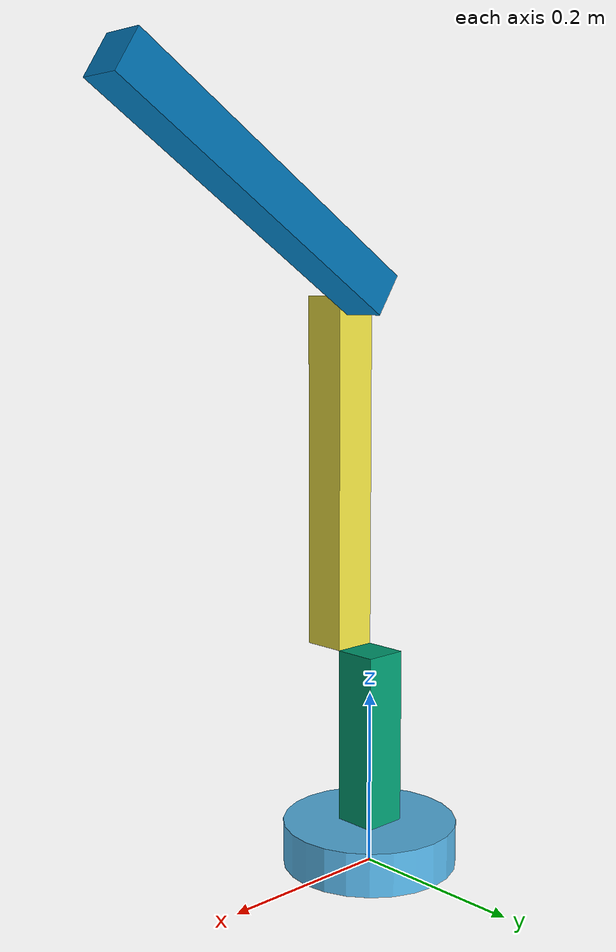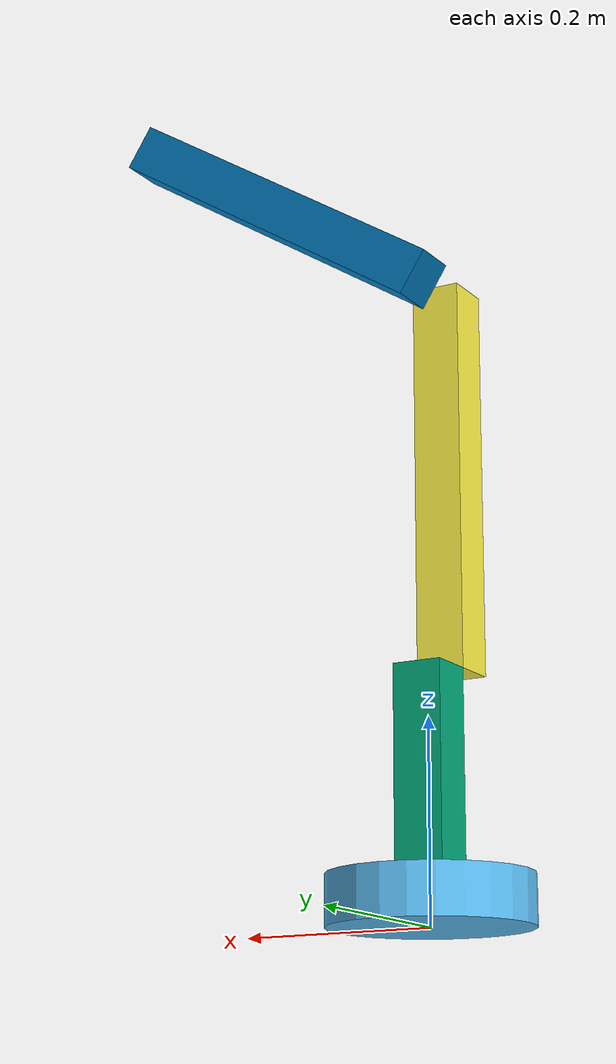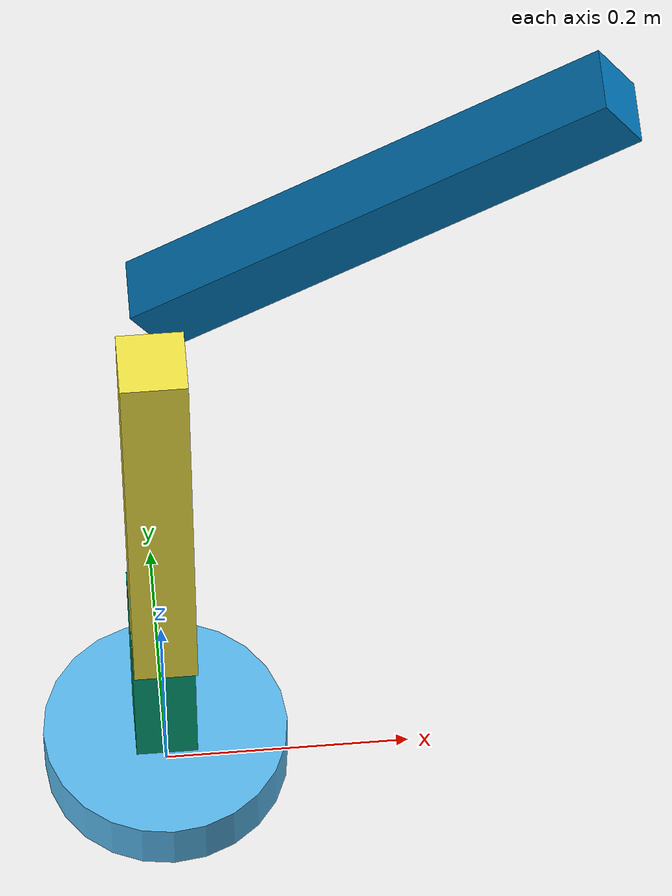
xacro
<?xml version="1.0"?>
<robot xmlns:xacro="http://www.ros.org/wiki/xacro" name="manp">

<!-- Constants -->

	<xacro:property name="pi" value="3.14159265359"/>
	<xacro:property name="width" value="0.05"/>
	<xacro:property name="height" value="0.4"/>
	<xacro:property name="base_h" value="0.05"/>
	<xacro:property name="base_r" value="0.1"/>
	<xacro:property name="base_link_mass" value="2"/>
	<xacro:property name="link_mass" value="4"/>

<!-- Links -->

	<link name="world"/>

	<link name="base_link">
		<visual>
			<geometry>
				<cylinder length="${base_h}" radius="${base_r}"/>
			</geometry>
			<origin xyz="0 0 ${base_h/2}"/>
		</visual>
		<inertial>
			<origin xyz="0 0 ${base_h/2}"/>
      			<mass value="${base_link_mass}"/>
      			<inertia
				ixx="${base_link_mass*(3*base_r*base_r+base_h*base_h)/12}" ixy="1e-3" ixz="1e-3"
				iyy="${base_link_mass*(3*base_r*base_r+base_h*base_h)/12}" iyz="1e-3" izz="${base_link_mass*base_r*base_r/2}"
			/>
    		</inertial>
		<collision>
      			<geometry>
        			<cylinder length="${base_h}" radius="${base_r}"/>
      			</geometry>
      			<origin xyz="0 0 ${base_h/2}"/>
    		</collision>
	</link>

	<link name="link1">
		<visual>
			<geometry>
				<box size="${width} ${width} ${height/2}"/>
			</geometry>
			<origin xyz="0 0 ${height/4}"/>
		</visual>
		<inertial>
			<origin xyz="0 0 ${height/4}"/>
      			<mass value="${link_mass/2}"/>
      			<inertia ixx="${link_mass*height*height/6}" ixy="1e-3" ixz="1e-3" iyy="${link_mass*height*height/6}" iyz="1e-3" izz="1e-3"/>
    		</inertial>
		<collision>
      			<geometry>
				<box size="${width} ${width} ${height/2}"/>
			</geometry>
			<origin xyz="0 0 ${height/4}"/>
    		</collision>
	</link>

	<link name="link2">
		<visual>
			<geometry>
				<box size="${width} ${width} ${height}"/>
			</geometry>
			<origin xyz="0 0 ${height/2}"/>
		</visual>
		<inertial>
			<origin xyz="0 0 ${height/2}"/>
      			<mass value="${link_mass}"/>
      			<inertia ixx="${link_mass*height*height/3}" ixy="1e-3" ixz="1e-3" iyy="${link_mass*height*height/3}" iyz="1e-3" izz="1e-3"/>
    		</inertial>
		<collision>
      			<geometry>
				<box size="${width} ${width} ${height}"/>
			</geometry>
			<origin xyz="0 0 ${height/2}"/>
    		</collision>
	</link>

	<link name="link3">
		<visual>
			<geometry>
				<box size="${width} ${width} ${height}"/>
			</geometry>
			<origin xyz="0 0 ${height/2}"/>
		</visual>
		<inertial>
			<origin xyz="0 0 ${height/2}"/>
      			<mass value="${link_mass}"/>
      			<inertia ixx="${link_mass*height*height/3}" ixy="1e-3" ixz="1e-3" iyy="${link_mass*height*height/3}" iyz="1e-3" izz="1e-3"/>
    		</inertial>
		<collision>
			<geometry>
				<box size="${width} ${width} ${height}"/>
			</geometry>
			<origin xyz="0 0 ${height/2}"/>
		</collision>
	</link>

<!-- Joints -->

	<joint name="world_to_base" type="continuous">
		<parent link="world"/>
		<child link="base_link"/>
		<origin xyz="0 0 0"/>
		<axis xyz="0 0 1"/>
		<limit lower="${-pi/2}" upper="${pi/2}" effort="10000" velocity="1"/>
	</joint>

	<joint name="base_to_link1" type="fixed">
		<parent link="base_link"/>
		<child link="link1"/>
		<origin xyz="0 0 ${base_h}"/>
	</joint>

	<joint name="link1_to_link2" type="revolute">
		<parent link="link1"/>
		<child link="link2"/>
		<origin xyz="0 ${-width} ${height/2}" rpy="0 0 0"/>
		<axis xyz="0 1 0"/>
		<limit lower="${-pi/2}" upper="${pi/2}" effort="10000" velocity="1"/>
	</joint>

	<joint name="link2_to_link3" type="revolute">
		<parent link="link2"/>
		<child link="link3"/>
		<origin xyz="0 ${width} ${height}" rpy="0 1 0"/>
		<axis xyz="0 1 0"/>
		<limit lower="${-pi/2}" upper="${pi/2}" effort="10000" velocity="1"/>
	</joint>

<!-- Transmissions -->

	<transmission name="world_to_base">
		<type>transmission_interface/SimpleTransmission</type>
    		<joint name="world_to_base">
      			<hardwareInterface>EffortJointInterface</hardwareInterface>
    		</joint>
    		<actuator name="z-motor">
      			<mechanicalReduction>1</mechanicalReduction>
      			<hardwareInterface>EffortJointInterface</hardwareInterface>
    		</actuator>
  	</transmission>

	<transmission name="link1_to_link2">
		<type>transmission_interface/SimpleTransmission</type>
    		<joint name="link1_to_link2">
      			<hardwareInterface>EffortJointInterface</hardwareInterface>
    		</joint>
    		<actuator name="y-motor2">
      			<mechanicalReduction>1</mechanicalReduction>
      			<hardwareInterface>EffortJointInterface</hardwareInterface>
    		</actuator>
  	</transmission>

	<transmission name="link2_to_link3">
		<type>transmission_interface/SimpleTransmission</type>
    		<joint name="link2_to_link3">
      			<hardwareInterface>EffortJointInterface</hardwareInterface>
    		</joint>
    		<actuator name="y-motor3">
      			<mechanicalReduction>1</mechanicalReduction>
      			<hardwareInterface>EffortJointInterface</hardwareInterface>
    		</actuator>
  	</transmission>

<!-- Setting self collide for every link -->

	<gazebo reference="base_link">
		<gravity>0</gravity>
    		<selfCollide>true</selfCollide>
	</gazebo>

	<gazebo reference="link1">
		<gravity>0</gravity>
    		<selfCollide>true</selfCollide>
	</gazebo>

	<gazebo reference="link2">
		<gravity>0</gravity>
    		<selfCollide>true</selfCollide>
	</gazebo>

	<gazebo reference="link3">
    		<selfCollide>true</selfCollide>
	</gazebo>

	<gazebo>
    		<plugin name="gazebo_ros_control" filename="libgazebo_ros_control.so">
      			<robotNamespace>/manp</robotNamespace>
    		</plugin>
	</gazebo>
</robot>
